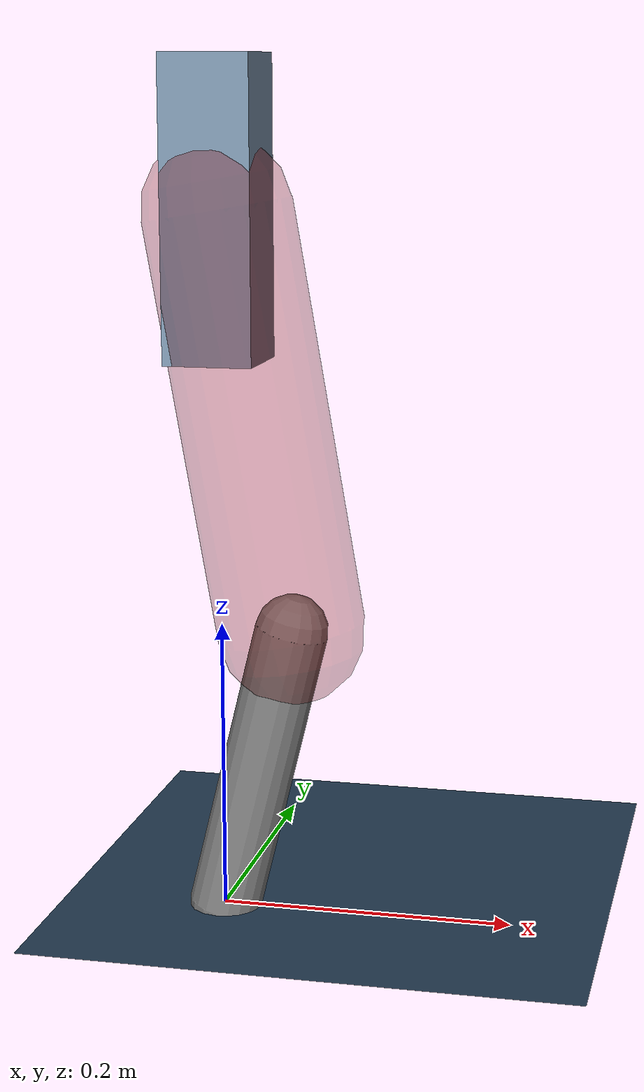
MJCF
<mujoco model="Hopper2D">
	<compiler inertiafromgeom="true" angle="radian" />
	<option timestep="0.001" integrator="implicit" cone="elliptic" solver="Newton" tolerance="1e-10" />

	<default>
		<geom contype="1" conaffinity="1" condim="3" friction="2 0.005 0.0001" solref="0.005 1" />
		<joint limited="true" damping="0.1" />
	</default>

	<asset>
		<texture name="skybox" type="skybox" builtin="gradient" rgb1=".4 .6 .8" rgb2="0 0 0" width="800" height="800" />
		<texture name="grid" type="2d" builtin="checker" rgb1=".1 .2 .3" rgb2=".2 .3 .4" width="300" height="300" mark="edge" markrgb=".2 .3 .4" />
		<material name="ground" texture="grid" texrepeat="1 1" texuniform="true" reflectance="0.1" />
		<material name="leg" rgba="0.5 0.6 0.7 1" />
	</asset>

	<worldbody>

		<geom name="floor" type="plane" size="5 5 0.25" material="ground" />

		<light directional="false" diffuse="0.8 0.8 0.8" specular="0.3 0.3 0.3" pos="0 0 2" dir="0 0 -1" />
		<light mode="targetbodycom" target="base" directional="false" diffuse="0.8 0.8 0.8" specular="0.3 0.3 0.3" pos="0 0 2" dir="0 0 -1" />

		<camera name="fixed" pos="0 -2 1" xyaxes="1 0 0 0 0 1" />
		<camera name="tracking" mode="trackcom" pos="0 -3 1" />

		<body name="root" pos="0 0 0.4794123420056722">
			<joint name="slide_x" type="slide" axis="1 0 0" range="-100 100" />
			<joint name="slide_z" type="slide" axis="0 0 1" range="0 10" />

			<body name="base" pos="0 0 0">
				<geom name="torso" type="box" size="0.03 0.03 0.1" mass="3.0250000000000004" material="leg" />

				<body name="link1" pos="0 0 0" euler="0 1.400002797314632 0">
					<joint type="hinge" axis="0 -1 0" pos="0 0 0" name="hinge1" limited="true" range="-3.14 3.14" stiffness="0" damping="0.1" />
					<geom name="thigh" type="capsule" fromto="0 0 0 0.2853621933988584 0 0" size="0.05" rgba="0.5 0 0 0.3" mass="0.9493779221769176" />

					<body name="link2" pos="0.2853621933988584 0 0" euler="0 0.41078421485516253 0">
						<joint type="hinge" axis="0 -1 0" pos="0 0 0" name="hinge2" limited="true" range="-3.14 3.14" stiffness="0" damping="0.1" />
						<geom name="shank" type="capsule" fromto="0 0 0 0.20405014860681378 0 0" size="0.025" mass="0.404340118885451" />

					</body>
				</body>
			</body>
		</body>
	</worldbody>

	<actuator>
		<motor name="torque1" joint="hinge1" ctrlrange="-82.70015786746569 82.70015786746569" ctrllimited="true" gear="1" />
		<motor name="torque2" joint="hinge2" ctrlrange="-165.11347841040083 165.11347841040083" ctrllimited="true" gear="1" />
	</actuator>
</mujoco>
